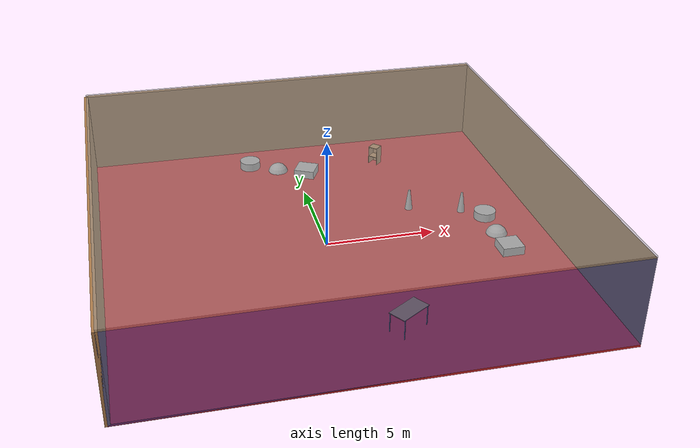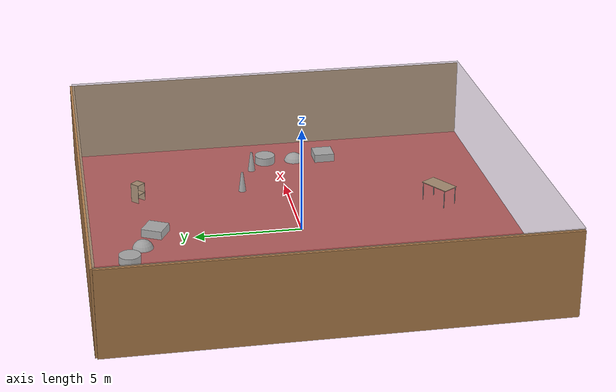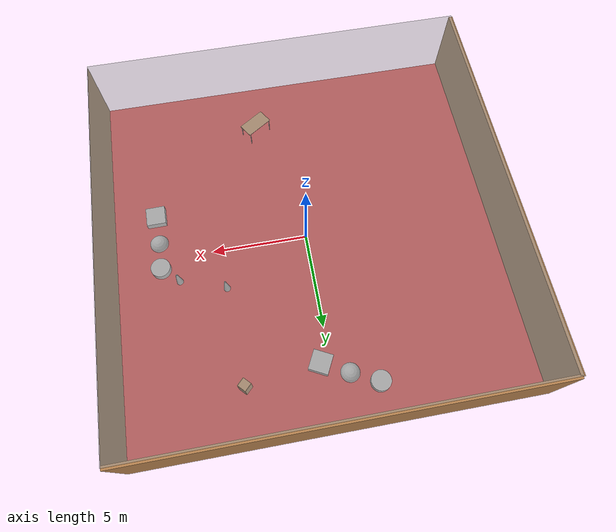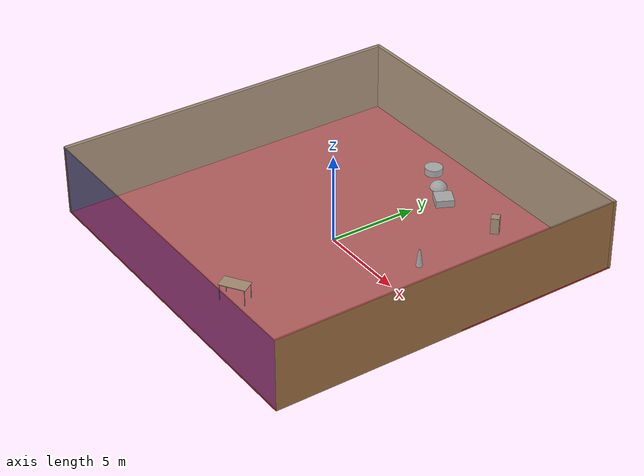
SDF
<sdf version="1.4">
 <world name="default">
  <physics type="ode">
   <max_step_size>0.001</max_step_size>
   <real_time_factor>1</real_time_factor>
   <real_time_update_rate>1000</real_time_update_rate>
   <gravity>0 0 -9.8</gravity>
  </physics>
  <scene><ambient>0.4 0.4 0.4 1</ambient><background>0.7 0.7 0.7 1</background><shadows>1</shadows></scene>
  <model name="Surrounding">
   <static>1</static>
   <link name="Ceiling">
    <collision name="Ceiling_Collision"><geometry><box><size>20 20 0.1</size></box></geometry></collision>
    <visual name="Ceiling_Visual">
     <geometry><box><size>20 20 0.1</size></box></geometry>
     <material>
      <script><uri>file://media/materials/scripts/gazebo.material</uri><name>Gazebo/GreyTransparent</name></script>
     </material>
    </visual>
    <pose>0 0 4.05 0 0 0</pose>
   </link>
   <link name="Wall_South">
    <collision name="Wall_South_Collision">
     <geometry><box><size>20 0 4</size></box></geometry>
     <pose>0 0 2 0 -0 0</pose>
    </collision>
    <visual name="Wall_South_Visual">
     <pose>0 0 2 0 -0 0</pose>
     <geometry><box><size>20 0 4</size></box></geometry>
     <material>
      <script><uri>file://media/materials/scripts/gazebo.material</uri><name>Gazebo/BlueTransparent</name></script>
     </material>
    </visual>
    <velocity_decay><linear>0</linear><angular>0</angular></velocity_decay>
    <pose>0 -10 0 0 -0 0</pose>
   </link>
   <link name="Wall_East">
    <collision name="Wall_21_Collision">
     <geometry><box><size>20 0 4</size></box></geometry>
     <pose>0 0 2 0 -0 0</pose>
    </collision>
    <visual name="Wall_21_Visual">
     <pose>0 0 2 0 -0 0</pose>
     <geometry><box><size>20 0 4</size></box></geometry>
     <material>
      <script><uri>file://media/materials/scripts/gazebo.material</uri><name>Gazebo/WoodPallet</name></script>
     </material>
    </visual>
    <velocity_decay><linear>0</linear><angular>0</angular></velocity_decay>
    <pose>10 0 0 0 -0 1.5708</pose>
   </link>
   <link name="Wall_North">
    <collision name="Wall_22_Collision">
     <geometry><box><size>20 0.2 4</size></box></geometry>
     <pose>0 0 2 0 -0 0</pose>
    </collision>
    <visual name="Wall_22_Visual">
     <pose>0 0 2 0 -0 0</pose>
     <geometry><box><size>20 0.2 4</size></box></geometry>
     <material>
      <script><uri>file://media/materials/scripts/gazebo.material</uri><name>Gazebo/Wood</name></script>
     </material>
    </visual>
    <velocity_decay><linear>0</linear><angular>0</angular></velocity_decay>
    <pose>0 10 0 0 -0 0</pose>
   </link>
   <link name="Wall_West">
    <collision name="Wall_23_Collision">
     <geometry><box><size>20 0.2 4</size></box></geometry>
     <pose>0 0 2 0 -0 0</pose>
    </collision>
    <visual name="Wall_23_Visual">
     <pose>0 0 2 0 -0 0</pose>
     <geometry><box><size>20 0.2 4</size></box></geometry>
     <material>
      <script><uri>file://media/materials/scripts/gazebo.material</uri><name>Gazebo/Wood</name></script>
     </material>
    </visual>
    <velocity_decay><linear>0</linear><angular>0</angular></velocity_decay>
    <pose>-10 0 0 0 0 -1.5708</pose>
   </link>
   <link name="Ground_link">
    <collision name="collision">
     <pose>0 0 .05 0 -0 0</pose>
     <geometry><box><size>20 20 0.1</size></box></geometry>
    </collision>
    <visual name="visual">
     <pose>0 0 .05 0 -0 0</pose>
     <geometry><box><size>20 20 0.1</size></box></geometry>
     <material>
      <script><uri>file://media/materials/scripts/gazebo.material</uri><name>Gazebo/RedBright</name></script>
     </material>
    </visual>
   </link>
   <static>1</static>
  </model>
  <spherical_coordinates>
   <surface_model>EARTH_WGS84</surface_model>
   <latitude_deg>0</latitude_deg>
   <longitude_deg>0</longitude_deg>
   <elevation>0</elevation>
   <heading_deg>0</heading_deg>
  </spherical_coordinates>
  <light name="lightball_0" type="diffuse">
   <diffuse>0.8 0.8 0.8 1</diffuse>
   <specular>0.2 0.2 0.2 1</specular>
   <attenuation>
    <range>100</range>
    <constant>0.7</constant>
    <linear>0.01</linear>
    <quadratic>0.001</quadratic>
   </attenuation>
   <direction>-0.5 0.1 -0.9</direction>
   <pose>-9.66931376731 -8.83764168962 1.91444799383 0 0 0</pose>
  </light>
  <light name="lightball_1" type="diffuse">
   <diffuse>0.8 0.8 0.8 1</diffuse>
   <specular>0.2 0.2 0.2 1</specular>
   <attenuation>
    <range>100</range>
    <constant>0.7</constant>
    <linear>0.01</linear>
    <quadratic>0.001</quadratic>
   </attenuation>
   <direction>-0.5 0.1 -0.9</direction>
   <pose>-8.15027747124 9.69365724923 3.80563669174 0 0 0</pose>
  </light>
  <light name="lightball_2" type="diffuse">
   <diffuse>0.8 0.8 0.8 1</diffuse>
   <specular>0.2 0.2 0.2 1</specular>
   <attenuation>
    <range>100</range>
    <constant>0.7</constant>
    <linear>0.01</linear>
    <quadratic>0.001</quadratic>
   </attenuation>
   <direction>-0.5 0.1 -0.9</direction>
   <pose>5.96769127087 -8.6223930857 3.43949409171 0 0 0</pose>
  </light>
  <light name="lightball_3" type="diffuse">
   <diffuse>0.8 0.8 0.8 1</diffuse>
   <specular>0.2 0.2 0.2 1</specular>
   <attenuation>
    <range>100</range>
    <constant>0.7</constant>
    <linear>0.01</linear>
    <quadratic>0.001</quadratic>
   </attenuation>
   <direction>-0.5 0.1 -0.9</direction>
   <pose>7.40683489763 4.13200856436 1.67643455824 0 0 0</pose>
  </light>
  <light name="lightball_4" type="diffuse">
   <diffuse>0.8 0.8 0.8 1</diffuse>
   <specular>0.2 0.2 0.2 1</specular>
   <attenuation>
    <range>100</range>
    <constant>0.7</constant>
    <linear>0.01</linear>
    <quadratic>0.001</quadratic>
   </attenuation>
   <direction>-0.5 0.1 -0.9</direction>
   <pose>-8.95979078061 -0.123691112049 0.708313067261 0 0 0</pose>
  </light>
  <light name="lightball_5" type="diffuse">
   <diffuse>0.8 0.8 0.8 1</diffuse>
   <specular>0.2 0.2 0.2 1</specular>
   <attenuation>
    <range>100</range>
    <constant>0.7</constant>
    <linear>0.01</linear>
    <quadratic>0.001</quadratic>
   </attenuation>
   <direction>-0.5 0.1 -0.9</direction>
   <pose>-7.59151057278 -6.28000646207 0.552179989472 0 0 0</pose>
  </light>
  <light name="lightball_6" type="diffuse">
   <diffuse>0.8 0.8 0.8 1</diffuse>
   <specular>0.2 0.2 0.2 1</specular>
   <attenuation>
    <range>100</range>
    <constant>0.7</constant>
    <linear>0.01</linear>
    <quadratic>0.001</quadratic>
   </attenuation>
   <direction>-0.5 0.1 -0.9</direction>
   <pose>4.22839045513 4.78448531159 2.34816371041 0 0 0</pose>
  </light>
  <light name="lightball_7" type="diffuse">
   <diffuse>0.8 0.8 0.8 1</diffuse>
   <specular>0.2 0.2 0.2 1</specular>
   <attenuation>
    <range>100</range>
    <constant>0.7</constant>
    <linear>0.01</linear>
    <quadratic>0.001</quadratic>
   </attenuation>
   <direction>-0.5 0.1 -0.9</direction>
   <pose>-9.55799854018 6.42621891934 3.73512770657 0 0 0</pose>
  </light>
  <light name="lightball_8" type="diffuse">
   <diffuse>0.8 0.8 0.8 1</diffuse>
   <specular>0.2 0.2 0.2 1</specular>
   <attenuation>
    <range>100</range>
    <constant>0.7</constant>
    <linear>0.01</linear>
    <quadratic>0.001</quadratic>
   </attenuation>
   <direction>-0.5 0.1 -0.9</direction>
   <pose>-6.96403759389 6.2893164334 1.79442965991 0 0 0</pose>
  </light>
  <light name="lightball_9" type="diffuse">
   <diffuse>0.8 0.8 0.8 1</diffuse>
   <specular>0.2 0.2 0.2 1</specular>
   <attenuation>
    <range>100</range>
    <constant>0.7</constant>
    <linear>0.01</linear>
    <quadratic>0.001</quadratic>
   </attenuation>
   <direction>-0.5 0.1 -0.9</direction>
   <pose>-7.74913918314 -5.6679400577 1.19628859679 0 0 0</pose>
  </light>
  <light name="lightball_10" type="diffuse">
   <diffuse>0.8 0.8 0.8 1</diffuse>
   <specular>0.2 0.2 0.2 1</specular>
   <attenuation>
    <range>100</range>
    <constant>0.7</constant>
    <linear>0.01</linear>
    <quadratic>0.001</quadratic>
   </attenuation>
   <direction>-0.5 0.1 -0.9</direction>
   <pose>-1.26088612926 -1.29009252238 3.86973943501 0 0 0</pose>
  </light>
  <light name="lightball_11" type="diffuse">
   <diffuse>0.8 0.8 0.8 1</diffuse>
   <specular>0.2 0.2 0.2 1</specular>
   <attenuation>
    <range>100</range>
    <constant>0.7</constant>
    <linear>0.01</linear>
    <quadratic>0.001</quadratic>
   </attenuation>
   <direction>-0.5 0.1 -0.9</direction>
   <pose>-7.76871077879 6.45805033398 3.07693304221 0 0 0</pose>
  </light>
  <light name="lightball_12" type="diffuse">
   <diffuse>0.8 0.8 0.8 1</diffuse>
   <specular>0.2 0.2 0.2 1</specular>
   <attenuation>
    <range>100</range>
    <constant>0.7</constant>
    <linear>0.01</linear>
    <quadratic>0.001</quadratic>
   </attenuation>
   <direction>-0.5 0.1 -0.9</direction>
   <pose>-0.937607695645 5.72100383346 1.63443381406 0 0 0</pose>
  </light>
  <light name="lightball_13" type="diffuse">
   <diffuse>0.8 0.8 0.8 1</diffuse>
   <specular>0.2 0.2 0.2 1</specular>
   <attenuation>
    <range>100</range>
    <constant>0.7</constant>
    <linear>0.01</linear>
    <quadratic>0.001</quadratic>
   </attenuation>
   <direction>-0.5 0.1 -0.9</direction>
   <pose>-1.77102062498 6.90403197965 3.00636165084 0 0 0</pose>
  </light>
  <include>
   <uri>model://textured_shapes</uri>
   <pose>-0.84995906014 7.45911239986 0 0 0 1.0983378407</pose>
  </include>
  <include><uri>model://table</uri><pose>1.65958114623 -6.98275833509 0 0 0 0.576474115295</pose></include>
  <include>
   <uri>model://construction_cone</uri>
   <pose>4.49441356926 2.17214942565 0 0 0 2.89925302822</pose>
  </include>
  <include><uri>model://cabinet</uri><pose>4.21795397854 7.27471571393 0 0 0 0.773845941652</pose></include>
  <include>
   <uri>model://textured_shapes</uri>
   <pose>7.73210192676 -0.925167990714 0 0 0 0.0103479893</pose>
  </include>
  <include>
   <uri>model://construction_cone</uri>
   <pose>6.83949510136 1.38258981181 0 0 0 1.48059952394</pose>
  </include>
 </world>
</sdf>

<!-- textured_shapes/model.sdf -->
<sdf version="1.6">
  <model name="textured_shapes">
    <pose>0 0 0.5 0 0 0</pose>
    <link name="box">
      <pose>0 -1.5 0 0 0 0</pose>
      <collision name="collision">
        <geometry>
          <box>
            <size>1 1 1</size>
          </box>
        </geometry>
      </collision>
      <visual name="visual">
        <geometry>
          <box>
            <size>1 1 1</size>
          </box>
        </geometry>
        <material>
          <script>
            <uri>model://../model_source/models/textured_shapes/materials/scripts</uri>
            <uri>model://../model_source/models/textured_shapes/materials/textures</uri>
            <name>TexturedShape/Squares</name>
          </script>
        </material>
      </visual>
    </link>
    <link name="sphere">
      <collision name="collision">
        <geometry>
          <sphere>
            <radius>0.5</radius>
          </sphere>
        </geometry>
      </collision>
      <visual name="visual">
        <geometry>
          <sphere>
            <radius>0.5</radius>
          </sphere>
        </geometry>
        <material>
          <script>
            <uri>model://../model_source/models/textured_shapes/materials/scripts</uri>
            <uri>model://../model_source/models/textured_shapes/materials/textures</uri>
            <name>TexturedShape/Squares</name>
          </script>
        </material>
      </visual>
    </link>
    <link name="cylinder">
      <pose>0 1.5 0 0 0 0</pose>
      <collision name="collision">
        <geometry>
          <cylinder>
            <radius>0.5</radius>
            <length>1</length>
          </cylinder>
        </geometry>
      </collision>
      <visual name="visual">
        <geometry>
          <cylinder>
            <radius>0.5</radius>
            <length>1</length>
          </cylinder>
        </geometry>
        <material>
          <script>
            <uri>model://../model_source/models/textured_shapes/materials/scripts</uri>
            <uri>model://../model_source/models/textured_shapes/materials/textures</uri>
            <name>TexturedShape/Squares</name>
          </script>
        </material>
      </visual>
    </link>
  </model>
</sdf>

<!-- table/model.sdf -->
<sdf version="1.5">
  <model name="table">
    <static>true</static>
    <link name="link">
      <collision name="surface">
        <pose>0 0 1.0 0 0 0</pose>
        <geometry>
          <box>
            <size>1.5 0.8 0.03</size>
          </box>
        </geometry>
        <surface>
          <friction>
            <ode>
              <mu>0.6</mu>
              <mu2>0.6</mu2>
            </ode>
          </friction>
        </surface>
      </collision>
      <visual name="visual1">
        <pose>0 0 1.0 0 0 0</pose>
        <geometry>
          <box>
            <size>1.5 0.8 0.03</size>
          </box>
        </geometry>
        <material>
          <script>
            <uri>model://media/materials/scripts/gazebo.material</uri>
            <name>Gazebo/Wood</name>
          </script>
        </material>
      </visual>
      <collision name="front_left_leg">
        <pose>0.68 0.38 0.5 0 0 0</pose>
        <geometry>
          <cylinder>
            <radius>0.02</radius>
            <length>1.0</length>
          </cylinder>
        </geometry>
      </collision>
      <visual name="front_left_leg">
        <pose>0.68 0.38 0.5 0 0 0</pose>
        <geometry>
          <cylinder>
            <radius>0.02</radius>
            <length>1.0</length>
          </cylinder>
        </geometry>
        <material>
          <script>
            <uri>model://media/materials/scripts/gazebo.material</uri>
            <name>Gazebo/Grey</name>
          </script>
        </material>
      </visual>
      <collision name="front_right_leg">
        <pose>0.68 -0.38 0.5 0 0 0</pose>
        <geometry>
          <cylinder>
            <radius>0.02</radius>
            <length>1.0</length>
          </cylinder>
        </geometry>
      </collision>
      <visual name="front_right_leg">
        <pose>0.68 -0.38 0.5 0 0 0</pose>
        <geometry>
          <cylinder>
            <radius>0.02</radius>
            <length>1.0</length>
          </cylinder>
        </geometry>
        <material>
          <script>
            <uri>model://media/materials/scripts/gazebo.material</uri>
            <name>Gazebo/Grey</name>
          </script>
        </material>
      </visual>
      <collision name="back_right_leg">
        <pose>-0.68 -0.38 0.5 0 0 0</pose>
        <geometry>
          <cylinder>
            <radius>0.02</radius>
            <length>1.0</length>
          </cylinder>
        </geometry>
      </collision>
      <visual name="back_right_leg">
        <pose>-0.68 -0.38 0.5 0 0 0</pose>
        <geometry>
          <cylinder>
            <radius>0.02</radius>
            <length>1.0</length>
          </cylinder>
        </geometry>
        <material>
          <script>
            <uri>model://media/materials/scripts/gazebo.material</uri>
            <name>Gazebo/Grey</name>
          </script>
        </material>
      </visual>
      <collision name="back_left_leg">
        <pose>-0.68 0.38 0.5 0 0 0</pose>
        <geometry>
          <cylinder>
            <radius>0.02</radius>
            <length>1.0</length>
          </cylinder>
        </geometry>
      </collision>
      <visual name="back_left_leg">
        <pose>-0.68 0.38 0.5 0 0 0</pose>
        <geometry>
          <cylinder>
            <radius>0.02</radius>
            <length>1.0</length>
          </cylinder>
        </geometry>
        <material>
          <script>
            <uri>model://media/materials/scripts/gazebo.material</uri>
            <name>Gazebo/Grey</name>
          </script>
        </material>
      </visual>
    </link>
  </model>
</sdf>

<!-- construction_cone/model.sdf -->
<sdf version="1.5">
  <model name="Construction Cone">
    <link name="link">
      <collision name="collision">
        <geometry>
          <mesh>
            <scale>10 10 10</scale>
            <uri>file://isr-testbed/construction_cone/meshes/construction_cone.dae</uri>
          </mesh>
        </geometry>
      </collision>
      <visual name="visual">
        <geometry>
          <mesh>
            <scale>10 10 10</scale>
            <uri>file://isr-testbed/construction_cone/meshes/construction_cone.dae</uri>
          </mesh>
        </geometry>
      </visual>
    </link>
  </model>
</sdf>

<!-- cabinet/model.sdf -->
<sdf version="1.5">
  <model name="cabinet">
    <static>true</static>
    <link name="cabinet_bottom_plate">
      <inertial>
        <pose>0 0 -1 0 0 0</pose>
        <inertia>
          <ixx>2.050000</ixx>
          <ixy>0</ixy>
          <ixz>0</ixz>
          <iyy>2.050000</iyy>
          <iyz>0</iyz>
          <izz>2.050000</izz>
        </inertia>
        <mass>25.000000</mass>
      </inertial>
      <collision name="cabinet_bottom_plate_geom">
        <pose>0 0 0.010000 0 0 0</pose>
        <geometry>
          <box>
            <size>0.450000 0.450000 0.020000</size>
          </box>
        </geometry>
      </collision>
      <visual name="cabinet_bottom_plate_geom_visual">
        <pose>0 0 0.010000 0 0 0</pose>
        <geometry>
          <box>
            <size>0.450000 0.450000 0.020000</size>
          </box>
        </geometry>
        <material>
          <script>
            <uri>model://media/materials/scripts/gazebo.material</uri>
            <name>Gazebo/Wood</name>
          </script>
        </material>
      </visual>
      <collision name="cabinet_bottom_plate_geom_cabinet_back_plate">
        <pose>0.235000 0 0.510000 0 0 0</pose>
        <geometry>
          <box>
            <size>0.020000 0.450000 1.020000</size>
          </box>
        </geometry>
      </collision>
      <visual name="cabinet_bottom_plate_geom_cabinet_back_plate_visual">
        <pose>0.235000 0 0.510000 0 0 0</pose>
        <geometry>
          <box>
            <size>0.020000 0.450000 1.020000</size>
          </box>
        </geometry>
        <material>
          <script>
            <uri>model://media/materials/scripts/gazebo.material</uri>
            <name>Gazebo/Wood</name>
          </script>
        </material>
      </visual>
      <collision name="cabinet_bottom_plate_geom_cabinet_left_plate">
        <pose>0 0.235000 0.510000 0 0 0</pose>
        <geometry>
          <box>
            <size>0.450000 0.020000 1.020000</size>
          </box>
        </geometry>
      </collision>
      <visual name="cabinet_bottom_plate_geom_cabinet_left_plate_visual">
        <pose>0 0.235000 0.510000 0 0 0</pose>
        <geometry>
          <box>
            <size>0.450000 0.020000 1.020000</size>
          </box>
        </geometry>
        <material>
          <script>
            <uri>model://media/materials/scripts/gazebo.material</uri>
            <name>Gazebo/Wood</name>
          </script>
        </material>
      </visual>
      <collision name="cabinet_bottom_plate_geom_cabinet_middle_plate">
        <pose>0 0 0.510000 0 0 0</pose>
        <geometry>
          <box>
            <size>0.450000 0.450000 0.020000</size>
          </box>
        </geometry>
      </collision>
      <visual name="cabinet_bottom_plate_geom_cabinet_middle_plate_visual">
        <pose>0 0 0.510000 0 0 0</pose>
        <geometry>
          <box>
            <size>0.450000 0.450000 0.020000</size>
          </box>
        </geometry>
        <material>
          <script>
            <uri>model://media/materials/scripts/gazebo.material</uri>
            <name>Gazebo/Wood</name>
          </script>
        </material>
      </visual>
      <collision name="cabinet_bottom_plate_geom_cabinet_right_plate">
        <pose>0 -0.235000 0.510000 0 0 0</pose>
        <geometry>
          <box>
            <size>0.450000 0.020000 1.020000</size>
          </box>
        </geometry>
      </collision>
      <visual name="cabinet_bottom_plate_geom_cabinet_right_plate_visual">
        <pose>0 -0.235000 0.510000 0 0 0</pose>
        <geometry>
          <box>
            <size>0.450000 0.020000 1.020000</size>
          </box>
        </geometry>
        <material>
          <script>
            <uri>model://media/materials/scripts/gazebo.material</uri>
            <name>Gazebo/Wood</name>
          </script>
        </material>
      </visual>
      <collision name="cabinet_bottom_plate_geom_cabinet_top_plate">
        <pose>0 0 1.010000 0 0 0</pose>
        <geometry>
          <box>
            <size>0.450000 0.450000 0.020000</size>
          </box>
        </geometry>
      </collision>
      <visual name="cabinet_bottom_plate_geom_cabinet_top_plate_visual">
        <pose>0 0 1.010000 0 0 0</pose>
        <geometry>
          <box>
            <size>0.450000 0.450000 0.020000</size>
          </box>
        </geometry>
        <material>
          <script>
            <uri>model://media/materials/scripts/gazebo.material</uri>
            <name>Gazebo/Wood</name>
          </script>
        </material>
      </visual>
    </link>
  </model>
</sdf>
